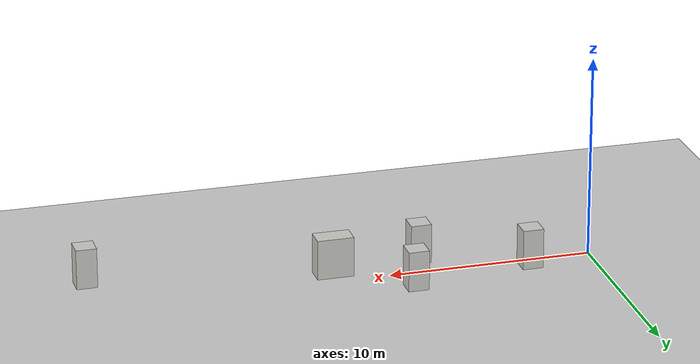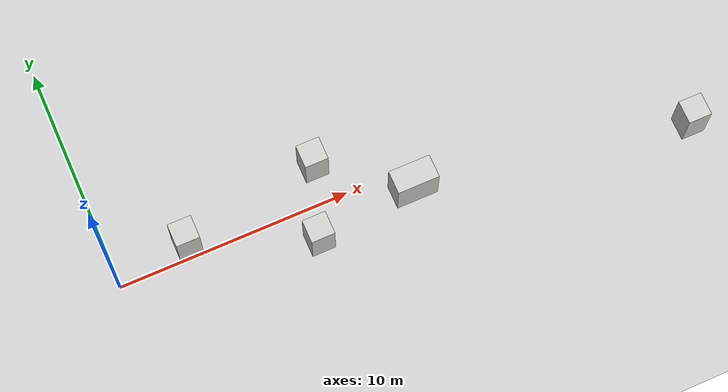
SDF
<sdf version="1.7">
 <world name="default">
  <light name="sun" type="directional">
   <pose>0 0 10 0 -0 0</pose>
   <diffuse>0.8 0.8 0.8 1</diffuse>
   <specular>0.2 0.2 0.2 1</specular>
   <attenuation>
    <range>1000</range>
    <constant>0.9</constant>
    <linear>0.01</linear>
    <quadratic>0.001</quadratic>
   </attenuation>
   <direction>-0.5 0.1 -0.9</direction>
   <spot><inner_angle>0</inner_angle><outer_angle>0</outer_angle><falloff>0</falloff></spot>
  </light>
  <model name="ground_plane">
   <static>1</static>
   <link name="link">
    <collision name="collision">
     <geometry><plane><normal>0 0 1</normal><size>100 100</size></plane></geometry>
     <surface>
      <contact><collide_bitmask>65535</collide_bitmask></contact>
      <friction><ode><mu>100</mu><mu2>50</mu2></ode></friction>
     </surface>
    </collision>
    <visual name="visual">
     <cast_shadows>0</cast_shadows>
     <geometry><plane><normal>0 0 1</normal><size>100 100</size></plane></geometry>
     <material>
      <script><uri>file://media/materials/scripts/gazebo.material</uri><name>Gazebo/Grey</name></script>
     </material>
    </visual>
   </link>
  </model>
  <gravity>0 0 -9.8</gravity>
  <magnetic_field>6e-06 2.3e-05 -4.2e-05</magnetic_field>
  <atmosphere type="adiabatic"/>
  <physics type="ode">
   <max_step_size>0.001</max_step_size>
   <real_time_factor>1</real_time_factor>
   <real_time_update_rate>1000</real_time_update_rate>
  </physics>
  <scene><ambient>0.4 0.4 0.4 1</ambient><background>0.7 0.7 0.7 1</background><shadows>1</shadows></scene>
  <spherical_coordinates>
   <surface_model>EARTH_WGS84</surface_model>
   <latitude_deg>0</latitude_deg>
   <longitude_deg>0</longitude_deg>
   <elevation>0</elevation>
   <heading_deg>0</heading_deg>
  </spherical_coordinates>
  <model name="box_1.8_1_2">
   <pose>13 0.5 0 0 -0 0</pose>
   <link name="Wall_0">
    <collision name="Wall_0_Collision">
     <geometry><box><size>1.8 1 2</size></box></geometry>
     <pose>0 0 1 0 -0 0</pose>
    </collision>
    <visual name="Wall_0_Visual">
     <pose>0 0 1 0 -0 0</pose>
     <geometry><box><size>1.8 1 2</size></box></geometry>
     <material>
      <script><uri>file://media/materials/scripts/gazebo.material</uri><name>Gazebo/CeilingTiled</name></script>
      <ambient>0.921569 0.807843 0.615686 1</ambient>
     </material>
     <meta><layer>0</layer></meta>
    </visual>
    <pose>-0.455 -1.44 0 0 -0 0</pose>
   </link>
   <static>1</static>
  </model>
  <model name="box_1_1_2">
   <pose>9 0 0 0 -0 0</pose>
   <link name="Wall_0">
    <collision name="Wall_0_Collision">
     <geometry><box><size>1.01 1 2</size></box></geometry>
     <pose>0 0 1 0 -0 0</pose>
    </collision>
    <visual name="Wall_0_Visual">
     <pose>0 0 1 0 -0 0</pose>
     <geometry><box><size>1.01 1 2</size></box></geometry>
     <material>
      <script><uri>file://media/materials/scripts/gazebo.material</uri><name>Gazebo/CeilingTiled</name></script>
      <ambient>0.921569 0.807843 0.615686 1</ambient>
     </material>
     <meta><layer>0</layer></meta>
    </visual>
    <pose>-0.85 -1.44 0 0 -0 0</pose>
   </link>
   <static>1</static>
  </model>
  <model name="box_1_1_2_clone">
   <pose>10 3 0 0 -0 0</pose>
   <link name="Wall_0">
    <collision name="Wall_0_Collision">
     <geometry><box><size>1.01 1 2</size></box></geometry>
     <pose>0 0 1 0 -0 0</pose>
    </collision>
    <visual name="Wall_0_Visual">
     <pose>0 0 1 0 -0 0</pose>
     <geometry><box><size>1.01 1 2</size></box></geometry>
     <material>
      <script><uri>file://media/materials/scripts/gazebo.material</uri><name>Gazebo/CeilingTiled</name></script>
      <ambient>0.921569 0.807843 0.615686 1</ambient>
     </material>
     <meta><layer>0</layer></meta>
    </visual>
    <pose>-0.85 -1.44 0 0 -0 0</pose>
   </link>
   <static>1</static>
  </model>
  <model name="box_1_1_2_clone_0">
   <pose>4 2 0 0 -0 0</pose>
   <link name="Wall_0">
    <collision name="Wall_0_Collision">
     <geometry><box><size>1.01 1 2</size></box></geometry>
     <pose>0 0 1 0 -0 0</pose>
    </collision>
    <visual name="Wall_0_Visual">
     <pose>0 0 1 0 -0 0</pose>
     <geometry><box><size>1.01 1 2</size></box></geometry>
     <material>
      <script><uri>file://media/materials/scripts/gazebo.material</uri><name>Gazebo/CeilingTiled</name></script>
      <ambient>0.921569 0.807843 0.615686 1</ambient>
     </material>
     <meta><layer>0</layer></meta>
    </visual>
    <pose>-0.85 -1.44 0 0 -0 0</pose>
   </link>
   <static>1</static>
  </model>
  <model name="box_1_1_2_clone_1">
   <pose>25.0418 -1.5 0 0 -0 0</pose>
   <link name="Wall_0">
    <collision name="Wall_0_Collision">
     <geometry><box><size>1.01 1 2</size></box></geometry>
     <pose>0 0 1 0 -0 0</pose>
    </collision>
    <visual name="Wall_0_Visual">
     <pose>0 0 1 0 -0 0</pose>
     <geometry><box><size>1.01 1 2</size></box></geometry>
     <material>
      <script><uri>file://media/materials/scripts/gazebo.material</uri><name>Gazebo/CeilingTiled</name></script>
      <ambient>0.921569 0.807843 0.615686 1</ambient>
     </material>
     <meta><layer>0</layer></meta>
    </visual>
    <pose>-0.85 -1.44 0 0 -0 0</pose>
   </link>
   <static>1</static>
  </model>
 </world>
</sdf>
